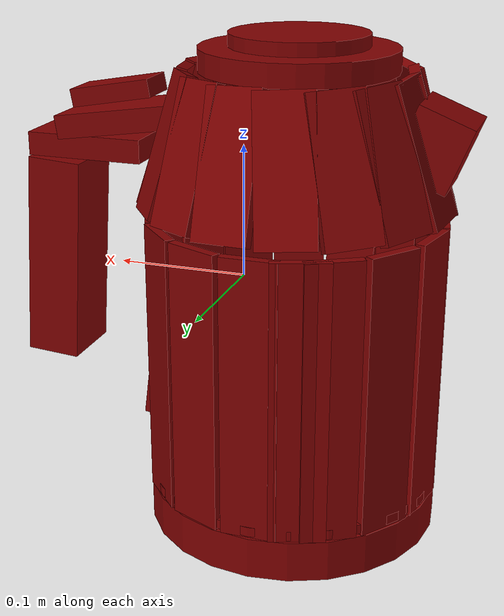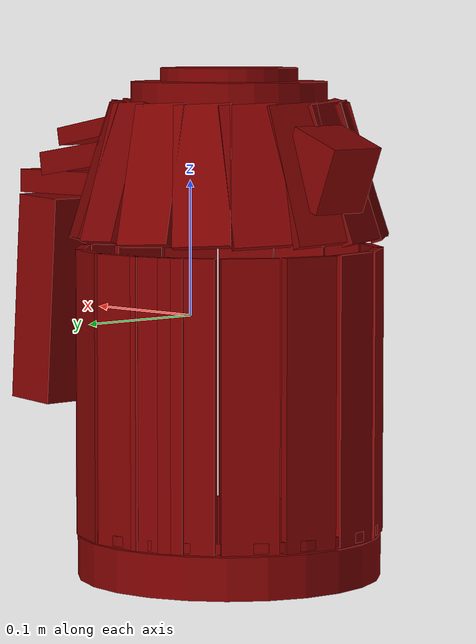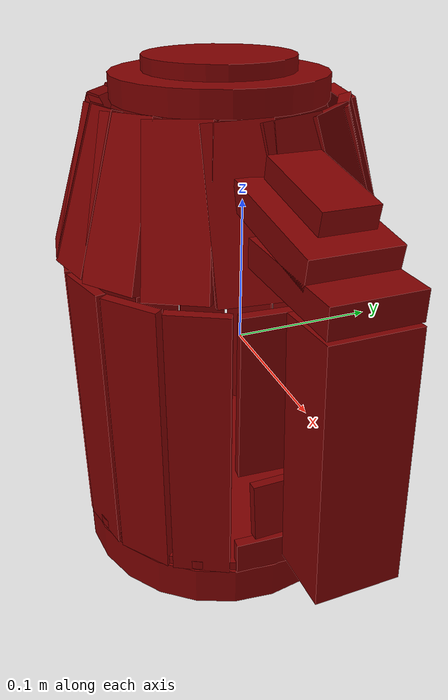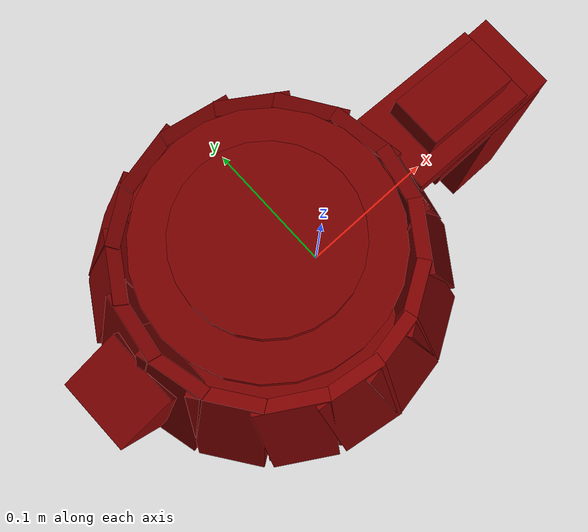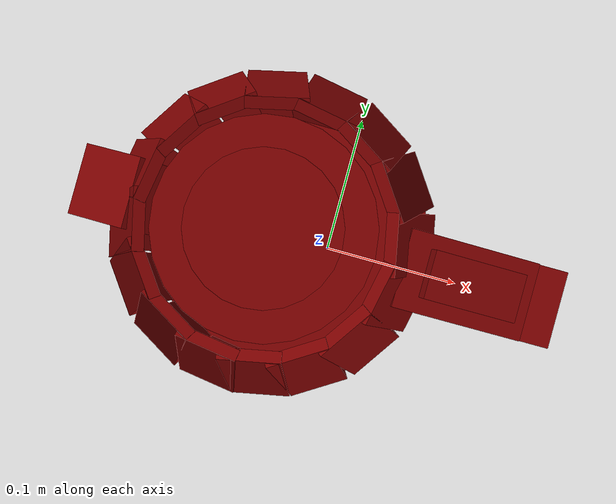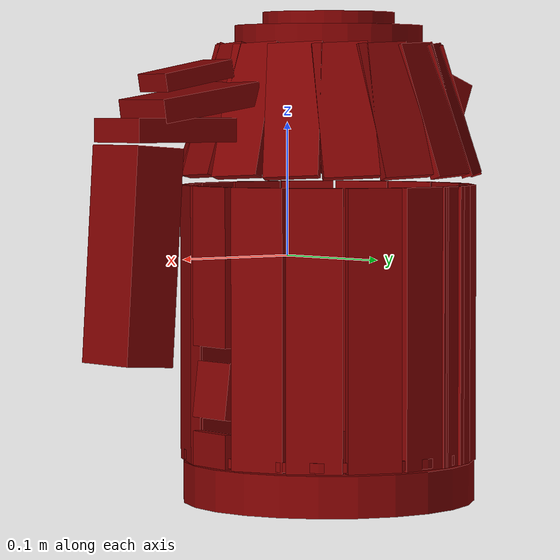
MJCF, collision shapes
<?xml version='1.0' encoding='UTF-8'?>
<mujoco model="model">
  <compiler angle="radian"/>
  <asset>
    <mesh file="visuals/Body001.obj" name="Body001_vis"/>
    <mesh file="visuals/Button001.obj" name="Button001_vis"/>
    <mesh file="visuals/Button002.obj" name="Button002_vis"/>
    <mesh file="visuals/Handle001.obj" name="Handle001_vis"/>
    <mesh file="visuals/Lid001.obj" name="Lid001_vis"/>
    <texture file="visuals/T_BC001.png" name="Body001_material" type="2d"/>
    <material name="Body001_material" rgba="1 1 1 1.0" texture="Body001_material" shininess="0.2512328028678894" specular="0.3103448502657381"/>
    <texture file="visuals/T_BC001.png" name="Handle001_material" type="2d"/>
    <material name="Handle001_material" rgba="1 1 1 1.0" texture="Handle001_material" shininess="0.2512328028678894" specular="0.3103448502657381"/>
    <texture file="visuals/T_BC001.png" name="Button001_material" type="2d"/>
    <material name="Button001_material" rgba="1 1 1 1.0" texture="Button001_material" shininess="0.2512328028678894" specular="0.3103448502657381"/>
    <texture file="visuals/T_BC001.png" name="Button002_material" type="2d"/>
    <material name="Button002_material" rgba="1 1 1 1.0" texture="Button002_material" shininess="0.2512328028678894" specular="0.3103448502657381"/>
    <texture file="visuals/T_BC001.png" name="Lid001_material" type="2d"/>
    <material name="Lid001_material" rgba="1 1 1 1.0" texture="Lid001_material" shininess="0.2512328028678894" specular="0.3103448502657381"/>
  </asset>
  <default>
    <default class="visual">
      <geom conaffinity="0" contype="0" group="1" type="mesh"/>
    </default>
    <default class="collision">
      <geom group="0" rgba="0.5 0 0 0.5"/>
    </default>
    <default class="spawn">
      <geom group="0" rgba="1 1 1 0.5" contype="0" conaffinity="0"/>
      <site group="0" rgba="1 1 1 0.5"/>
    </default>
    <default class="region">
      <geom group="1" conaffinity="0" contype="0" rgba="0 1 0 0"/>
    </default>
  </default>
  <worldbody>
    <body>
      <body name="object">
        <geom mesh="Body001_vis" type="mesh" solimp="0.998 0.998 0.001" solref="0.001 1" density="100" friction="0.95 0.3 0.1" class="visual" material="Body001_material"/>
        <geom class="collision" type="cylinder" pos="-0.040890 0.000010 -0.172528" size="0.11124438792467117 0.015558336861431599" quat="0.7071068286895752 0.0 0.0 0.7071067690849304"/>
        <body name="Handle001">
          <joint axis="0.0 0.0 1.0" pos="0.000000 0.000074 -0.000805" limited="true" name="Handle001_joint" range="0.0 0.1" type="slide" damping="1" frictionloss="1" armature=".01" stiffness="0.05"/>
          <geom mesh="Handle001_vis" type="mesh" solimp="0.998 0.998 0.001" solref="0.001 1" density="100" friction="0.95 0.3 0.1" class="visual" material="Handle001_material"/>
          <geom class="collision" type="box" pos="-0.040890 0.107013 -0.051561" size="0.003531360998749733 0.020732257515192032 0.10418971627950668" quat="0.7071068286895752 0.0 0.0 0.7071067690849304"/>
          <geom class="collision" type="box" pos="-0.040890 0.107013 -0.051561" size="0.003531360998749733 0.020732257515192032 0.10418971627950668" quat="0.7071068286895752 0.0 0.0 0.7071067690849304"/>
          <geom class="collision" type="box" pos="0.001540 0.098241 -0.051561" size="0.0035313607659190893 0.020732255652546883 0.10418971627950668" quat="0.8356213569641113 0.0 0.0 0.5493058562278748"/>
          <geom class="collision" type="box" pos="0.037033 0.073344 -0.051561" size="0.003531360998749733 0.020732257515192032 0.10418971627950668" quat="0.9295758008956909 0.0 0.0 0.368630975484848"/>
          <geom class="collision" type="box" pos="0.059733 0.037059 -0.051561" size="0.003531360998749733 0.020732255652546883 0.10418973118066788" quat="0.9783125519752502 0.0 0.0 0.20713411271572113"/>
          <geom class="collision" type="box" pos="0.066352 -0.007764 -0.142844" size="0.003531360998749733 0.020732257515192032 0.01290628407150507" quat="0.999381422996521 0.0 0.0 -0.03516842797398567"/>
          <geom class="collision" type="box" pos="0.053719 -0.050327 -0.051561" size="0.003531360998749733 0.020732257515192032 0.10418971627950668" quat="0.9701465368270874 0.0 0.0 -0.2425195723772049"/>
          <geom class="collision" type="box" pos="0.026014 -0.083638 -0.051561" size="0.003531360998749733 0.020732257515192032 0.10418971627950668" quat="0.9009568095207214 0.0 0.0 -0.4339088201522827"/>
          <geom class="collision" type="box" pos="-0.012657 -0.103240 -0.051561" size="0.003531360998749733 0.020732257515192032 0.10418971627950668" quat="0.7943715453147888 0.0 0.0 -0.6074321866035461"/>
          <geom class="collision" type="box" pos="-0.056804 -0.105760 -0.051561" size="0.003531360998749733 0.020732257515192032 0.10418971627950668" quat="0.6517195105552673 0.0 -0.0 -0.7584600448608398"/>
          <geom class="collision" type="box" pos="-0.098020 -0.090945 -0.051561" size="0.003531360998749733 0.020732257515192032 0.10418971627950668" quat="0.48403555154800415 0.0 -0.0 -0.8750483393669128"/>
          <geom class="collision" type="box" pos="-0.129438 -0.060056 -0.051561" size="0.003531360998749733 0.020732257515192032 0.10418971627950668" quat="0.29274100065231323 0.0 -0.0 -0.9561917781829834"/>
          <geom class="collision" type="box" pos="-0.145923 -0.019988 -0.051561" size="0.0035313612315803766 0.02073225937783718 0.10418971627950668" quat="0.09309259057044983 0.0 -0.0 -0.9956574440002441"/>
          <geom class="collision" type="box" pos="-0.145163 0.023360 -0.051561" size="0.003531360998749733 0.020732257515192032 0.10418971627950668" quat="0.11054379492998123 0.0 0.0 0.99387127161026"/>
          <geom class="collision" type="box" pos="-0.126743 0.063560 -0.051561" size="0.0035313612315803766 0.02073225937783718 0.10418971627950668" quat="0.31351524591445923 0.0 0.0 0.9495831727981567"/>
          <geom class="collision" type="box" pos="-0.094371 0.093061 -0.051561" size="0.0035313607659190893 0.020732255652546883 0.10418971627950668" quat="0.4998989999294281 0.0 0.0 0.8660836815834045"/>
          <geom class="collision" type="box" pos="-0.074542 0.101966 -0.051561" size="0.003531360998749733 0.020732257515192032 0.10418971627950668" quat="0.585281491279602 0.0 0.0 0.8108301758766174"/>
          <geom class="collision" type="box" pos="0.066352 -0.007764 -0.006719" size="0.003531360998749733 0.020732257515192032 0.05934770777821541" quat="0.999381422996521 0.0 0.0 -0.03516842797398567"/>
          <geom class="collision" type="box" pos="0.116202 0.000010 0.094830" size="0.026539601385593414 0.04474828392267227 0.008762944489717484" quat="0.7071068286895752 0.0 0.0 0.7071067690849304"/>
          <geom class="collision" type="box" pos="0.146717 0.000010 0.004414" size="0.026539616286754608 0.02080962248146534 0.07887310534715652" quat="0.7067153453826904 -0.02352476492524147 -0.02352476678788662 0.7067153453826904"/>
          <geom class="collision" type="box" pos="-0.056871 -0.093965 0.109082" size="0.003977437969297171 0.020732255652546883 0.05129411444067955" quat="0.6439078450202942 -0.10060315579175949 -0.11708022654056549 -0.7493690252304077"/>
          <geom class="collision" type="box" pos="-0.091931 -0.080498 0.109081" size="0.003977437969297171 0.020732253789901733 0.05129411071538925" quat="0.48366251587867737 -0.12169675529003143 -0.09496693313121796 -0.8615345358848572"/>
          <geom class="collision" type="box" pos="-0.119659 -0.053675 0.109081" size="0.003977437969297171 0.020732251927256584 0.05129410699009895" quat="0.29932263493537903 -0.13839606940746307 -0.06837660819292068 -0.9415822625160217"/>
          <geom class="collision" type="box" pos="-0.133995 -0.020440 0.109082" size="0.003977438434958458 0.020732257515192032 0.05129411444067955" quat="0.1151157096028328 -0.1488603949546814 -0.04085797071456909 -0.9812846779823303"/>
          <geom class="collision" type="box" pos="-0.134667 0.017112 0.109081" size="0.003977437969297171 0.020732248201966286 0.05129410699009895" quat="0.08045467734336853 0.1539924293756485 0.010731582529842854 0.9847325682640076"/>
          <geom class="collision" type="box" pos="-0.120209 0.052879 0.109081" size="0.003977437969297171 0.020732251927256584 0.051294099539518356" quat="0.2780543267726898 0.1529783308506012 -0.02065136469900608 0.9480806589126587"/>
          <geom class="collision" type="box" pos="-0.095071 0.078439 0.109082" size="0.003977437969297171 0.020732255652546883 0.05129411444067955" quat="0.45137497782707214 0.14636589586734772 -0.04904959723353386 0.8788809776306152"/>
          <geom class="collision" type="box" pos="-0.060570 0.093280 0.109081" size="0.003977437969297171 0.020732251927256584 0.05129410699009895" quat="0.615670382976532 0.13383470475673676 -0.0769226998090744 0.772736132144928"/>
          <geom class="collision" type="box" pos="-0.021992 0.093442 0.109081" size="0.003977437969297171 0.020732253789901733 0.05129410699009895" quat="0.7592993974685669 0.11550059914588928 -0.10241339355707169 0.6321672797203064"/>
          <geom class="collision" type="box" pos="0.012382 0.079059 0.109082" size="0.003977437969297171 0.020732255652546883 0.05129411444067955" quat="0.8682090640068054 0.09325709939002991 -0.12301197648048401 0.4715763032436371"/>
          <geom class="collision" type="box" pos="0.038782 0.052346 0.109081" size="0.003977437969297171 0.020732250064611435 0.05129410699009895" quat="0.9440962076187134 0.06719603389501572 -0.13897311687469482 0.2912962734699249"/>
          <geom class="collision" type="box" pos="0.053000 0.016483 0.109081" size="0.003977437969297171 0.020732251927256584 0.05129410699009895" quat="0.9835100173950195 0.03768428787589073 -0.14969560503959656 0.09422940015792847"/>
          <geom class="collision" type="box" pos="0.052079 -0.021051 0.109082" size="0.003977437969297171 0.020732253789901733 0.05129411444067955" quat="0.9828066229820251 0.00746604148298502 -0.1541852504014969 -0.1013031005859375"/>
          <geom class="collision" type="box" pos="0.036727 -0.055328 0.109081" size="0.003977438434958458 0.020732251927256584 0.051294099539518356" quat="0.9435896873474121 -0.023055123165249825 -0.15263450145721436 -0.29293292760849"/>
          <geom class="collision" type="box" pos="0.008439 -0.081559 0.109081" size="0.003977437969297171 0.020732251927256584 0.05129410699009895" quat="0.864793598651886 -0.05346410349011421 -0.14481158554553986 -0.47781088948249817"/>
          <geom class="collision" type="box" pos="-0.024337 -0.093866 0.109081" size="0.003977437503635883 0.020732250064611435 0.05129410699009895" quat="0.7623418569564819 -0.07914788275957108 -0.13253068923950195 -0.6284950971603394"/>
          <geom class="collision" type="box" pos="-0.141399 0.000010 0.112457" size="0.023766638711094856 0.02080962248146534 0.024814028292894363" quat="0.6947651505470276 -0.1315348893404007 -0.1315348744392395 0.6947650909423828"/>
          <geom class="collision" type="box" pos="0.093399 0.000010 0.114905" size="0.026539601385593414 0.04474828392267227 0.008762944489717484" quat="0.7051696181297302 0.052305132150650024 0.05230513587594032 0.7051695585250854"/>
          <geom class="collision" type="cylinder" pos="-0.040890 0.000010 -0.150974" size="0.11124438792467117 0.0036440379917621613" quat="0.7071068286895752 0.0 0.0 0.7071067690849304"/>
          <body name="Button001">
            <joint axis="0.0 0.0 -1.0" pos="0.104625 0.000003 0.137331" limited="true" name="Button001_joint" range="0.0 0.003" type="slide" damping="1" frictionloss="1" armature=".01" stiffness="0.3" springref="-2"/>
            <geom mesh="Button001_vis" type="mesh" solimp="0.998 0.998 0.001" solref="0.001 1" density="100" friction="0.95 0.3 0.1" class="visual" material="Button001_material"/>
            <geom class="collision" type="box" pos="0.097662 0.000484 0.134358" size="0.016185544431209564 0.031404461711645126 0.006680401507765055" quat="0.7043230533599854 0.06268153339624405 0.06268154829740524 0.7043231725692749"/>
          </body>
          <body name="Button002">
            <joint axis="0.0 1.0 0.0" pos="0.071336 0.000000 -0.097592" limited="true" name="Button002_joint" range="0.0 0.22689280275926282" type="hinge" damping="1" frictionloss="1" armature=".01" stiffness="0.05"/>
            <geom mesh="Button002_vis" type="mesh" solimp="0.998 0.998 0.001" solref="0.001 1" density="100" friction="0.95 0.3 0.1" class="visual" material="Button002_material"/>
            <geom class="collision" type="box" pos="0.070736 0.000010 -0.097798" size="0.018760845065116882 0.0036192922852933407 0.02099692076444626" quat="0.705668032169342 -0.045084889978170395 -0.04508490115404129 0.705668032169342"/>
          </body>
          <body name="Lid001">
            <joint axis="0.0 1.0 0.0" pos="0.036319 0.000000 0.157217" limited="true" name="Lid001_joint" range="0.0 1.5707963267948966" type="hinge" damping="1" frictionloss="1" armature=".01" stiffness="0.05"/>
            <geom mesh="Lid001_vis" type="mesh" solimp="0.998 0.998 0.001" solref="0.001 1" density="100" friction="0.95 0.3 0.1" class="visual" material="Lid001_material"/>
            <geom class="collision" type="cylinder" pos="-0.040890 0.000010 0.164841" size="0.07136362791061401 0.008273830637335777" quat="0.7071068286895752 0.0 0.0 0.7071067690849304"/>
            <geom class="collision" type="cylinder" pos="-0.040890 0.000010 0.178295" size="0.05005728453397751 0.004783078096807003" quat="0.7071068286895752 0.0 0.0 0.7071067690849304"/>
          </body>
        </body>
        <geom class="region" name="reg_main" type="box" pos="0.0 2.2999999999995246e-05 0.0" size="0.174136 0.111514 0.1894"/>
      </body>
    </body>
  </worldbody>
  <actuator>
    <motor name="Handle001_joint_actuator" joint="Handle001_joint" gear="10"/>
    <motor name="Button001_joint_actuator" joint="Button001_joint" gear="0.5"/>
    <motor name="Button002_joint_actuator" joint="Button002_joint" gear="0.5"/>
    <motor name="Lid001_joint_actuator" joint="Lid001_joint" gear="0.5"/>
  </actuator>
</mujoco>
